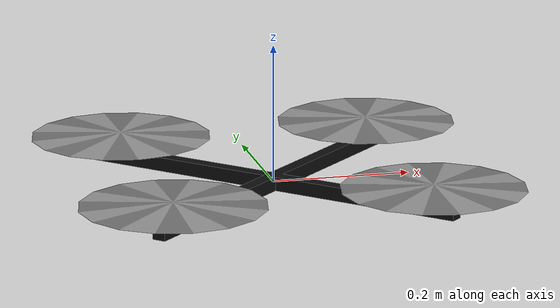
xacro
<?xml version="1.0"?>

<robot
  name="quadrotor"
  xmlns:xacro="http://www.ros.org/wiki/xacro"
>

  <!-- Main quadrotor link -->
  <xacro:macro name="quadrotor_base_macro">
    <link name="base_link">
      <visual>
        <origin xyz="0 0 0" rpy="0 0 0" />
        <geometry>
          <mesh filename="package://artificial_potential_fields/models/quadrotor/meshes/quadrotor.dae"/>
        </geometry>
      </visual>

      <collision>
        <origin xyz="0 0 0" rpy="0 0 0" />
        <geometry>
          <mesh filename="package://artificial_potential_fields/models/quadrotor/meshes/quadrotor.stl"/>
        </geometry>
      </collision>
    </link>
  </xacro:macro>

    <!-- Instantiate quadrotor_base_macro once (has no parameters atm) -->
    <xacro:quadrotor_base_macro />

</robot>
